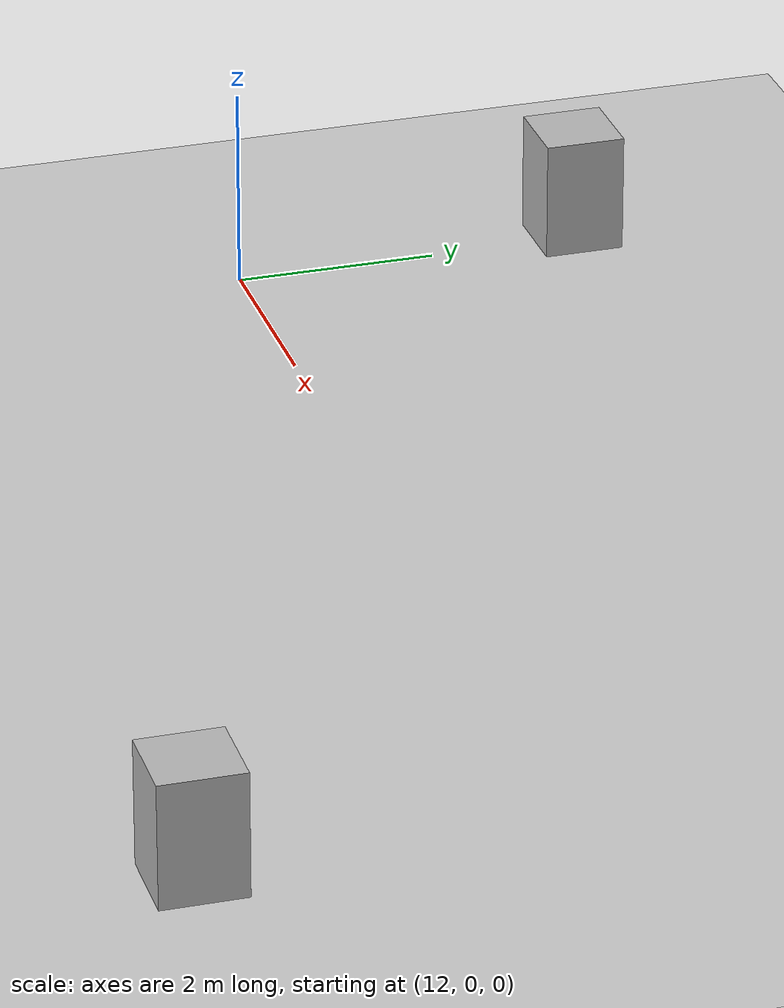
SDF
<?xml version="1.0"?>
<sdf version="1.6">
  <world name="v2-04g-p2-q1-qual-braking-v135-s5337">
    <gravity>0 0 -9.81</gravity>
    <physics name="v2_deterministic" type="ode">
      <max_step_size>0.002</max_step_size>
      <real_time_update_rate>500</real_time_update_rate>
    </physics>
    <include>
      <uri>model://sun</uri>
    </include>
    <include>
      <uri>model://ground_plane</uri>
    </include>
    <model name="cruise-left">
      <static>true</static>
      <pose>11.965600071 3.492010324 0.600000000 0 0 -0.000398508</pose>
      <link name="link">
        <collision name="collision">
          <geometry>
            <box>
              <size>0.800000 0.800000 1.200000</size>
            </box>
          </geometry>
        </collision>
        <visual name="visual">
          <geometry>
            <box>
              <size>0.800000 0.800000 1.200000</size>
            </box>
          </geometry>
        </visual>
      </link>
    </model>
    <model name="cruise-right">
      <static>true</static>
      <pose>23.035112272 -3.456084658 0.600000000 0 0 -0.009147244</pose>
      <link name="link">
        <collision name="collision">
          <geometry>
            <box>
              <size>0.800000 0.800000 1.200000</size>
            </box>
          </geometry>
        </collision>
        <visual name="visual">
          <geometry>
            <box>
              <size>0.800000 0.800000 1.200000</size>
            </box>
          </geometry>
        </visual>
      </link>
    </model>
  </world>
</sdf>
